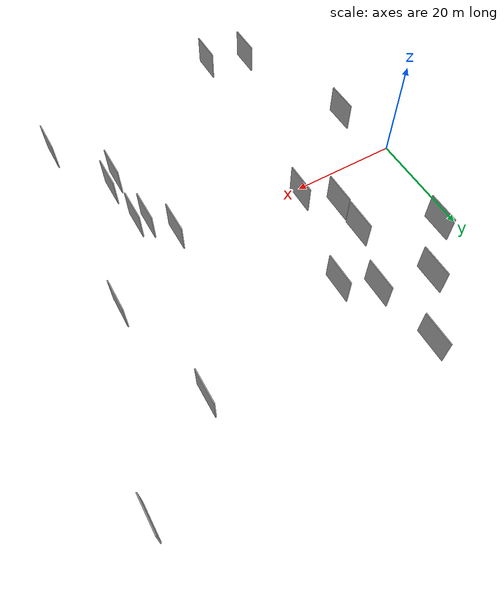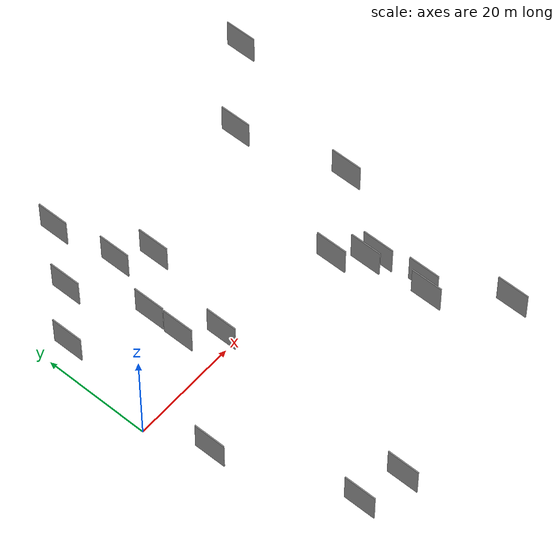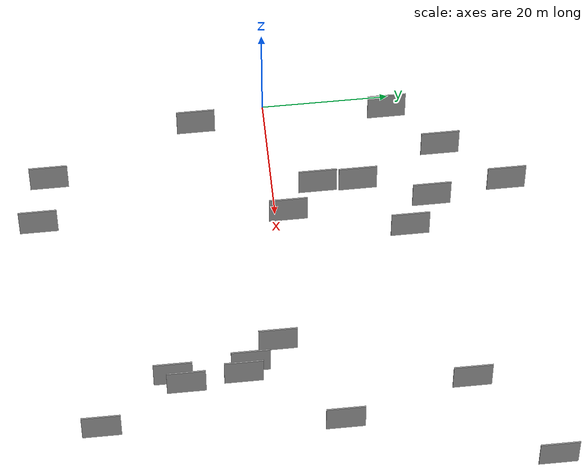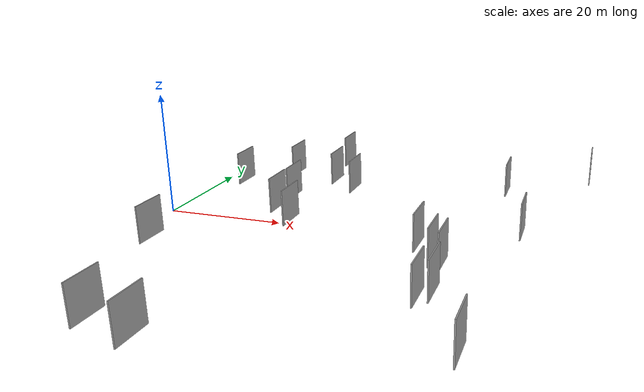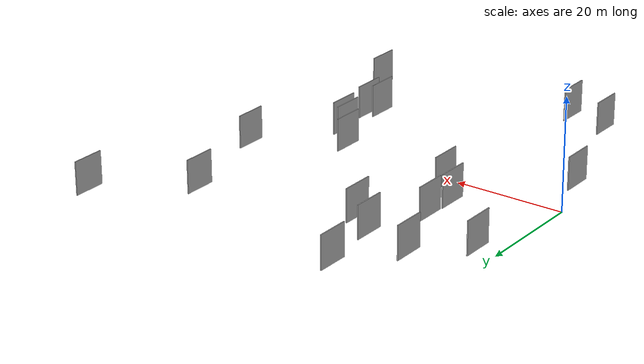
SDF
<sdf version="1.6">
 <world name="default">
  <scene>
   <sky><clouds><speed>12</speed></clouds></sky>
   <ambient>0.4 0.4 0.4 1</ambient>
   <background>0.7 0.7 0.7 1</background>
   <shadows>1</shadows>
  </scene>
  <gravity>0 0 -9.8066</gravity>
  <magnetic_field>6e-06 2.3e-05 -4.2e-05</magnetic_field>
  <physics default="0" name="default_physics" type="ode">
   <ode>
    <solver>
     <type>quick</type>
     <iters>10</iters>
     <sor>1.0</sor>
     <use_dynamic_moi_rescaling>0</use_dynamic_moi_rescaling>
    </solver>
    <constraints>
     <cfm>0</cfm>
     <erp>0.2</erp>
     <contact_max_correcting_vel>100</contact_max_correcting_vel>
     <contact_surface_layer>0.001</contact_surface_layer>
    </constraints>
   </ode>
   <max_step_size>0.004</max_step_size>
   <real_time_factor>1</real_time_factor>
   <real_time_update_rate>250</real_time_update_rate>
  </physics>
  <light name="sun" type="directional">
   <pose>0 0 10 0 0 0</pose>
   <diffuse>0.8 0.8 0.8 1</diffuse>
   <specular>0.2 0.2 0.2 1</specular>
   <attenuation>
    <range>1000</range>
    <constant>0.9</constant>
    <linear>0.01</linear>
    <quadratic>0.001</quadratic>
   </attenuation>
   <direction>-0.5 0.1 -0.9</direction>
  </light>
  <model name="grey_wall_1">
   <static>1</static>
   <pose>16.6074 13.3891 0.0 0.000000 0.000000 1.570796</pose>
   <link name="link">
    <pose>0 0 3.00 0 0 0</pose>
    <collision name="collision"><geometry><box><size>6.00 0.2 6.00</size></box></geometry></collision>
    <visual name="visual">
     <cast_shadows>0</cast_shadows>
     <geometry><box><size>6.00 0.2 6.00</size></box></geometry>
     <material>
      <script>
       <uri>model://grey_wall/materials/scripts</uri>
       <uri>model://grey_wall/materials/textures</uri>
       <name>vrc/grey_wall</name>
      </script>
     </material>
    </visual>
   </link>
  </model>
  <model name="grey_wall_2">
   <static>1</static>
   <pose>11.3932 26.9885 0.0 0.000000 0.000000 1.570796</pose>
   <link name="link">
    <pose>0 0 3.00 0 0 0</pose>
    <collision name="collision"><geometry><box><size>6.00 0.2 6.00</size></box></geometry></collision>
    <visual name="visual">
     <cast_shadows>0</cast_shadows>
     <geometry><box><size>6.00 0.2 6.00</size></box></geometry>
     <material>
      <script>
       <uri>model://grey_wall/materials/scripts</uri>
       <uri>model://grey_wall/materials/textures</uri>
       <name>vrc/grey_wall</name>
      </script>
     </material>
    </visual>
   </link>
  </model>
  <model name="grey_wall_3">
   <static>1</static>
   <pose>50.0877 -16.4734 0.0 0.000000 0.000000 1.570796</pose>
   <link name="link">
    <pose>0 0 3.00 0 0 0</pose>
    <collision name="collision"><geometry><box><size>6.00 0.2 6.00</size></box></geometry></collision>
    <visual name="visual">
     <cast_shadows>0</cast_shadows>
     <geometry><box><size>6.00 0.2 6.00</size></box></geometry>
     <material>
      <script>
       <uri>model://grey_wall/materials/scripts</uri>
       <uri>model://grey_wall/materials/textures</uri>
       <name>vrc/grey_wall</name>
      </script>
     </material>
    </visual>
   </link>
  </model>
  <model name="grey_wall_4">
   <static>1</static>
   <pose>53.4508 26.8519 0.0 0.000000 0.000000 1.570796</pose>
   <link name="link">
    <pose>0 0 3.00 0 0 0</pose>
    <collision name="collision"><geometry><box><size>6.00 0.2 6.00</size></box></geometry></collision>
    <visual name="visual">
     <cast_shadows>0</cast_shadows>
     <geometry><box><size>6.00 0.2 6.00</size></box></geometry>
     <material>
      <script>
       <uri>model://grey_wall/materials/scripts</uri>
       <uri>model://grey_wall/materials/textures</uri>
       <name>vrc/grey_wall</name>
      </script>
     </material>
    </visual>
   </link>
  </model>
  <model name="grey_wall_5">
   <static>1</static>
   <pose>21.2005 1.9819 0.0 0.000000 0.000000 1.570796</pose>
   <link name="link">
    <pose>0 0 3.00 0 0 0</pose>
    <collision name="collision"><geometry><box><size>6.00 0.2 6.00</size></box></geometry></collision>
    <visual name="visual">
     <cast_shadows>0</cast_shadows>
     <geometry><box><size>6.00 0.2 6.00</size></box></geometry>
     <material>
      <script>
       <uri>model://grey_wall/materials/scripts</uri>
       <uri>model://grey_wall/materials/textures</uri>
       <name>vrc/grey_wall</name>
      </script>
     </material>
    </visual>
   </link>
  </model>
  <model name="grey_wall_6">
   <static>1</static>
   <pose>3.6694 19.3817 0.0 0.000000 0.000000 1.570796</pose>
   <link name="link">
    <pose>0 0 3.00 0 0 0</pose>
    <collision name="collision"><geometry><box><size>6.00 0.2 6.00</size></box></geometry></collision>
    <visual name="visual">
     <cast_shadows>0</cast_shadows>
     <geometry><box><size>6.00 0.2 6.00</size></box></geometry>
     <material>
      <script>
       <uri>model://grey_wall/materials/scripts</uri>
       <uri>model://grey_wall/materials/textures</uri>
       <name>vrc/grey_wall</name>
      </script>
     </material>
    </visual>
   </link>
  </model>
  <model name="grey_wall_7">
   <static>1</static>
   <pose>67.8193 38.0876 0.0 0.000000 0.000000 1.570796</pose>
   <link name="link">
    <pose>0 0 3.00 0 0 0</pose>
    <collision name="collision"><geometry><box><size>6.00 0.2 6.00</size></box></geometry></collision>
    <visual name="visual">
     <cast_shadows>0</cast_shadows>
     <geometry><box><size>6.00 0.2 6.00</size></box></geometry>
     <material>
      <script>
       <uri>model://grey_wall/materials/scripts</uri>
       <uri>model://grey_wall/materials/textures</uri>
       <name>vrc/grey_wall</name>
      </script>
     </material>
    </visual>
   </link>
  </model>
  <model name="grey_wall_8">
   <static>1</static>
   <pose>47.4550 -6.4200 0.0 0.000000 0.000000 1.570796</pose>
   <link name="link">
    <pose>0 0 3.00 0 0 0</pose>
    <collision name="collision"><geometry><box><size>6.00 0.2 6.00</size></box></geometry></collision>
    <visual name="visual">
     <cast_shadows>0</cast_shadows>
     <geometry><box><size>6.00 0.2 6.00</size></box></geometry>
     <material>
      <script>
       <uri>model://grey_wall/materials/scripts</uri>
       <uri>model://grey_wall/materials/textures</uri>
       <name>vrc/grey_wall</name>
      </script>
     </material>
    </visual>
   </link>
  </model>
  <model name="grey_wall_9">
   <static>1</static>
   <pose>3.5678 -10.9646 0.0 0.000000 0.000000 1.570796</pose>
   <link name="link">
    <pose>0 0 3.00 0 0 0</pose>
    <collision name="collision"><geometry><box><size>6.00 0.2 6.00</size></box></geometry></collision>
    <visual name="visual">
     <cast_shadows>0</cast_shadows>
     <geometry><box><size>6.00 0.2 6.00</size></box></geometry>
     <material>
      <script>
       <uri>model://grey_wall/materials/scripts</uri>
       <uri>model://grey_wall/materials/textures</uri>
       <name>vrc/grey_wall</name>
      </script>
     </material>
    </visual>
   </link>
  </model>
  <model name="grey_wall_10">
   <static>1</static>
   <pose>49.2062 -7.6290 0.0 0.000000 0.000000 1.570796</pose>
   <link name="link">
    <pose>0 0 3.00 0 0 0</pose>
    <collision name="collision"><geometry><box><size>6.00 0.2 6.00</size></box></geometry></collision>
    <visual name="visual">
     <cast_shadows>0</cast_shadows>
     <geometry><box><size>6.00 0.2 6.00</size></box></geometry>
     <material>
      <script>
       <uri>model://grey_wall/materials/scripts</uri>
       <uri>model://grey_wall/materials/textures</uri>
       <name>vrc/grey_wall</name>
      </script>
     </material>
    </visual>
   </link>
  </model>
  <model name="grey_wall_11">
   <static>1</static>
   <pose>18.8695 36.5396 0.0 0.000000 0.000000 1.570796</pose>
   <link name="link">
    <pose>0 0 3.00 0 0 0</pose>
    <collision name="collision"><geometry><box><size>6.00 0.2 6.00</size></box></geometry></collision>
    <visual name="visual">
     <cast_shadows>0</cast_shadows>
     <geometry><box><size>6.00 0.2 6.00</size></box></geometry>
     <material>
      <script>
       <uri>model://grey_wall/materials/scripts</uri>
       <uri>model://grey_wall/materials/textures</uri>
       <name>vrc/grey_wall</name>
      </script>
     </material>
    </visual>
   </link>
  </model>
  <model name="grey_wall_12">
   <static>1</static>
   <pose>19.5187 -36.9543 0.0 0.000000 0.000000 1.570796</pose>
   <link name="link">
    <pose>0 0 3.00 0 0 0</pose>
    <collision name="collision"><geometry><box><size>6.00 0.2 6.00</size></box></geometry></collision>
    <visual name="visual">
     <cast_shadows>0</cast_shadows>
     <geometry><box><size>6.00 0.2 6.00</size></box></geometry>
     <material>
      <script>
       <uri>model://grey_wall/materials/scripts</uri>
       <uri>model://grey_wall/materials/textures</uri>
       <name>vrc/grey_wall</name>
      </script>
     </material>
    </visual>
   </link>
  </model>
  <model name="grey_wall_13">
   <static>1</static>
   <pose>20.6415 24.5656 0.0 0.000000 0.000000 1.570796</pose>
   <link name="link">
    <pose>0 0 3.00 0 0 0</pose>
    <collision name="collision"><geometry><box><size>6.00 0.2 6.00</size></box></geometry></collision>
    <visual name="visual">
     <cast_shadows>0</cast_shadows>
     <geometry><box><size>6.00 0.2 6.00</size></box></geometry>
     <material>
      <script>
       <uri>model://grey_wall/materials/scripts</uri>
       <uri>model://grey_wall/materials/textures</uri>
       <name>vrc/grey_wall</name>
      </script>
     </material>
    </visual>
   </link>
  </model>
  <model name="grey_wall_14">
   <static>1</static>
   <pose>56.3731 -29.8533 0.0 0.000000 0.000000 1.570796</pose>
   <link name="link">
    <pose>0 0 3.00 0 0 0</pose>
    <collision name="collision"><geometry><box><size>6.00 0.2 6.00</size></box></geometry></collision>
    <visual name="visual">
     <cast_shadows>0</cast_shadows>
     <geometry><box><size>6.00 0.2 6.00</size></box></geometry>
     <material>
      <script>
       <uri>model://grey_wall/materials/scripts</uri>
       <uri>model://grey_wall/materials/textures</uri>
       <name>vrc/grey_wall</name>
      </script>
     </material>
    </visual>
   </link>
  </model>
  <model name="grey_wall_15">
   <static>1</static>
   <pose>11.5971 -34.7823 0.0 0.000000 0.000000 1.570796</pose>
   <link name="link">
    <pose>0 0 3.00 0 0 0</pose>
    <collision name="collision"><geometry><box><size>6.00 0.2 6.00</size></box></geometry></collision>
    <visual name="visual">
     <cast_shadows>0</cast_shadows>
     <geometry><box><size>6.00 0.2 6.00</size></box></geometry>
     <material>
      <script>
       <uri>model://grey_wall/materials/scripts</uri>
       <uri>model://grey_wall/materials/textures</uri>
       <name>vrc/grey_wall</name>
      </script>
     </material>
    </visual>
   </link>
  </model>
  <model name="grey_wall_16">
   <static>1</static>
   <pose>58.6077 6.9284 0.0 0.000000 0.000000 1.570796</pose>
   <link name="link">
    <pose>0 0 3.00 0 0 0</pose>
    <collision name="collision"><geometry><box><size>6.00 0.2 6.00</size></box></geometry></collision>
    <visual name="visual">
     <cast_shadows>0</cast_shadows>
     <geometry><box><size>6.00 0.2 6.00</size></box></geometry>
     <material>
      <script>
       <uri>model://grey_wall/materials/scripts</uri>
       <uri>model://grey_wall/materials/textures</uri>
       <name>vrc/grey_wall</name>
      </script>
     </material>
    </visual>
   </link>
  </model>
  <model name="grey_wall_17">
   <static>1</static>
   <pose>25.7342 20.6157 0.0 0.000000 0.000000 1.570796</pose>
   <link name="link">
    <pose>0 0 3.00 0 0 0</pose>
    <collision name="collision"><geometry><box><size>6.00 0.2 6.00</size></box></geometry></collision>
    <visual name="visual">
     <cast_shadows>0</cast_shadows>
     <geometry><box><size>6.00 0.2 6.00</size></box></geometry>
     <material>
      <script>
       <uri>model://grey_wall/materials/scripts</uri>
       <uri>model://grey_wall/materials/textures</uri>
       <name>vrc/grey_wall</name>
      </script>
     </material>
    </visual>
   </link>
  </model>
  <model name="grey_wall_18">
   <static>1</static>
   <pose>48.4342 -18.3689 0.0 0.000000 0.000000 1.570796</pose>
   <link name="link">
    <pose>0 0 3.00 0 0 0</pose>
    <collision name="collision"><geometry><box><size>6.00 0.2 6.00</size></box></geometry></collision>
    <visual name="visual">
     <cast_shadows>0</cast_shadows>
     <geometry><box><size>6.00 0.2 6.00</size></box></geometry>
     <material>
      <script>
       <uri>model://grey_wall/materials/scripts</uri>
       <uri>model://grey_wall/materials/textures</uri>
       <name>vrc/grey_wall</name>
      </script>
     </material>
    </visual>
   </link>
  </model>
  <model name="grey_wall_19">
   <static>1</static>
   <pose>44.1155 -1.9035 0.0 0.000000 0.000000 1.570796</pose>
   <link name="link">
    <pose>0 0 3.00 0 0 0</pose>
    <collision name="collision"><geometry><box><size>6.00 0.2 6.00</size></box></geometry></collision>
    <visual name="visual">
     <cast_shadows>0</cast_shadows>
     <geometry><box><size>6.00 0.2 6.00</size></box></geometry>
     <material>
      <script>
       <uri>model://grey_wall/materials/scripts</uri>
       <uri>model://grey_wall/materials/textures</uri>
       <name>vrc/grey_wall</name>
      </script>
     </material>
    </visual>
   </link>
  </model>
  <model name="grey_wall_20">
   <static>1</static>
   <pose>16.4522 7.0796 0.0 0.000000 0.000000 1.570796</pose>
   <link name="link">
    <pose>0 0 3.00 0 0 0</pose>
    <collision name="collision"><geometry><box><size>6.00 0.2 6.00</size></box></geometry></collision>
    <visual name="visual">
     <cast_shadows>0</cast_shadows>
     <geometry><box><size>6.00 0.2 6.00</size></box></geometry>
     <material>
      <script>
       <uri>model://grey_wall/materials/scripts</uri>
       <uri>model://grey_wall/materials/textures</uri>
       <name>vrc/grey_wall</name>
      </script>
     </material>
    </visual>
   </link>
  </model>
 </world>
</sdf>
